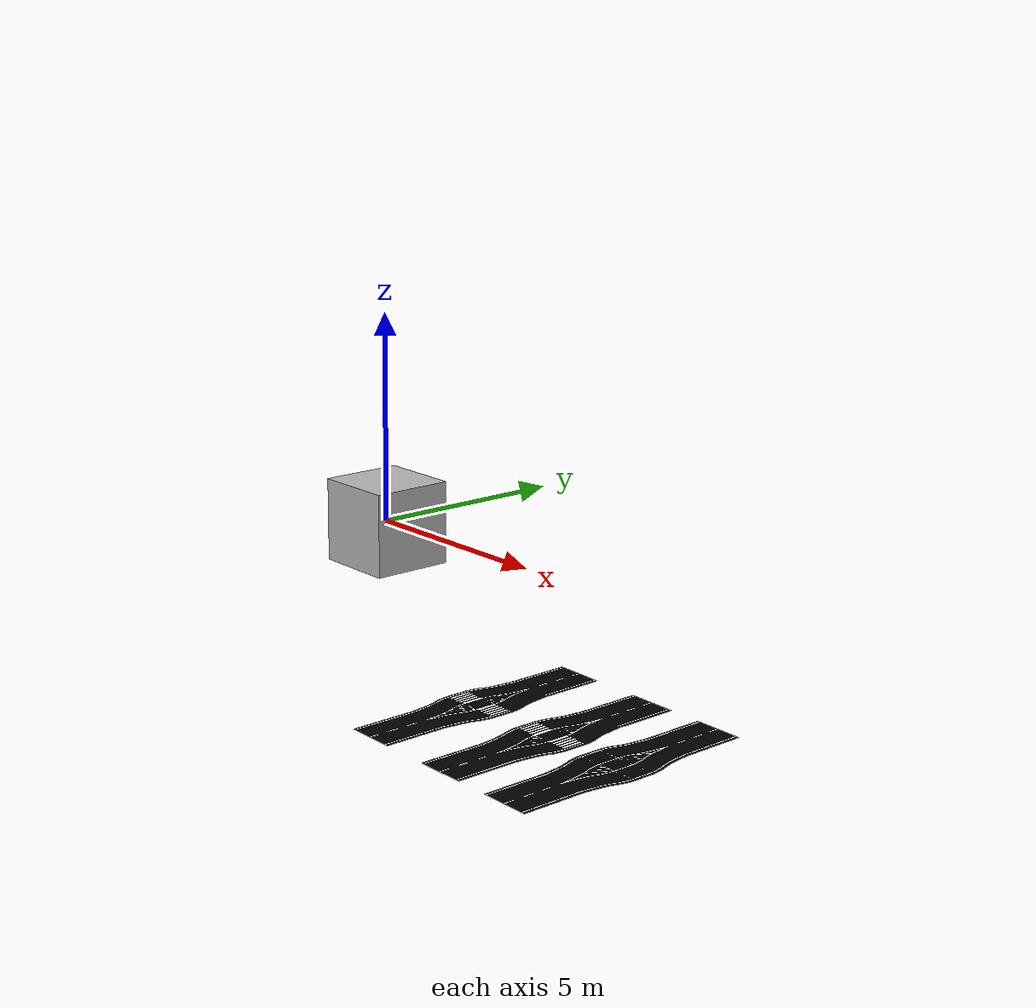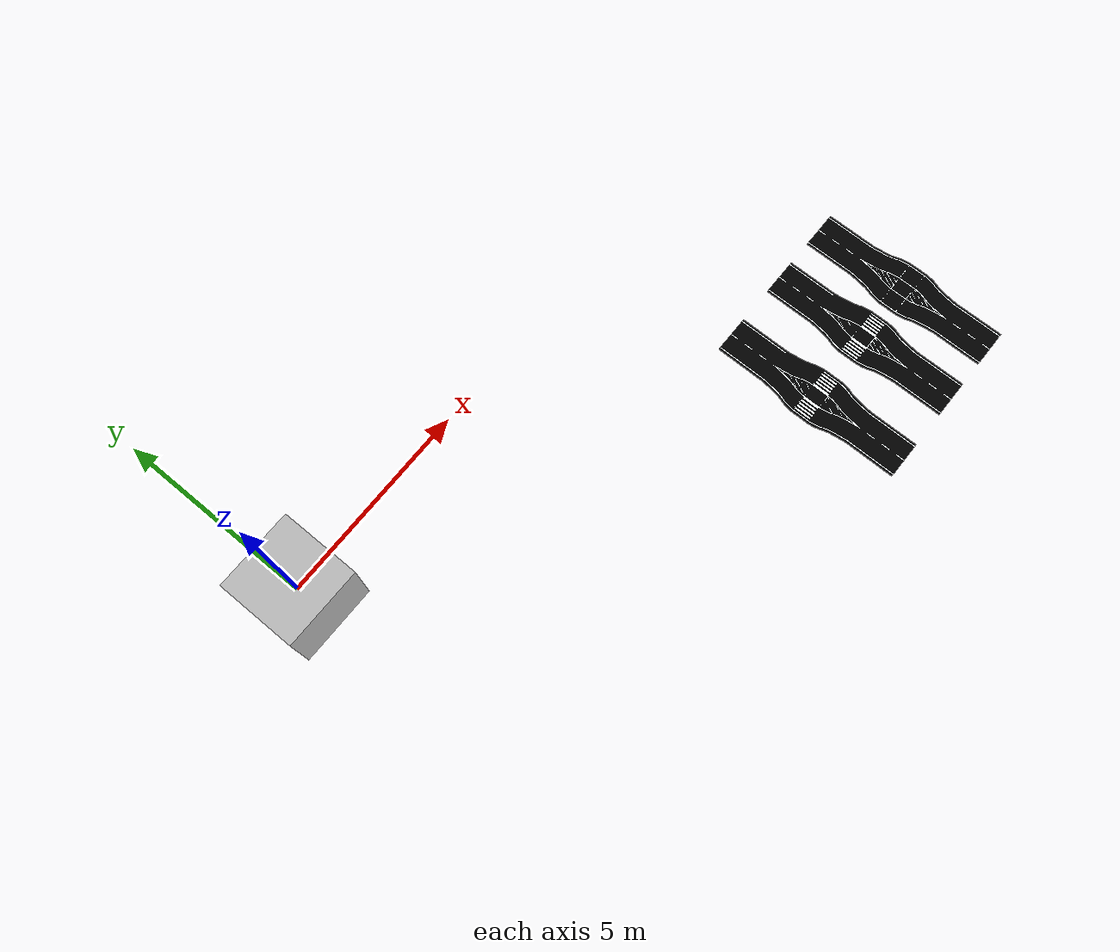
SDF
<?xml version="1.0" ?>
<sdf version="1.6">
  <model name="autcup_city_tiles">
    <pose>0 0 0 0 0 0</pose>
    <static>true</static>

    <link name="autcup_city_tiles">
      <collision name="collision">
        <geometry>
          <mesh>
            <uri>model://autcup_city_tiles/autcup_city_tiles.dae</uri>
          </mesh>
        </geometry>
      </collision>

      <visual name="visual">
        <cast_shadows>true</cast_shadows>
        <geometry>
          <mesh>
            <uri>model://autcup_city_tiles/autcup_city_tiles.dae</uri>
          </mesh>
        </geometry>
      </visual>
    </link>
  </model>
</sdf>
